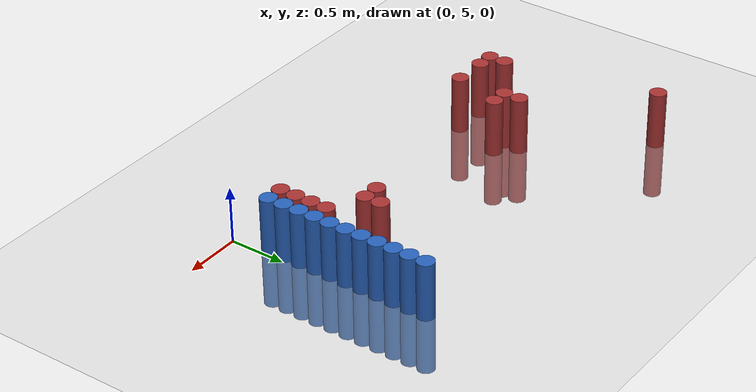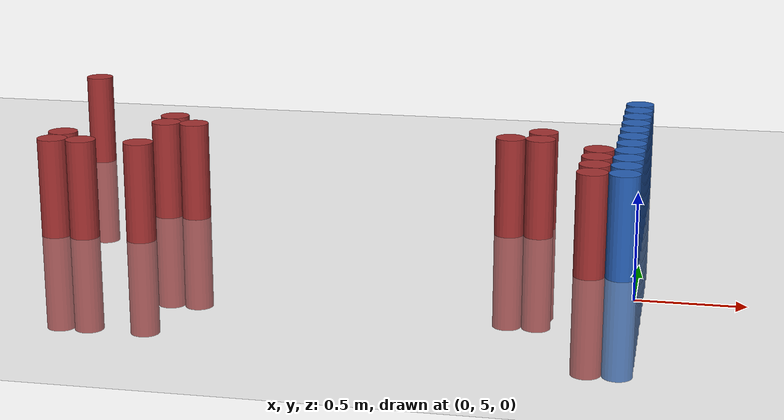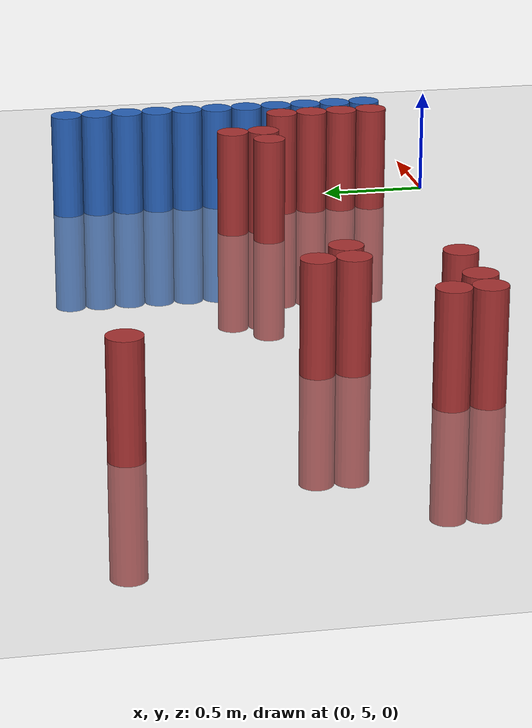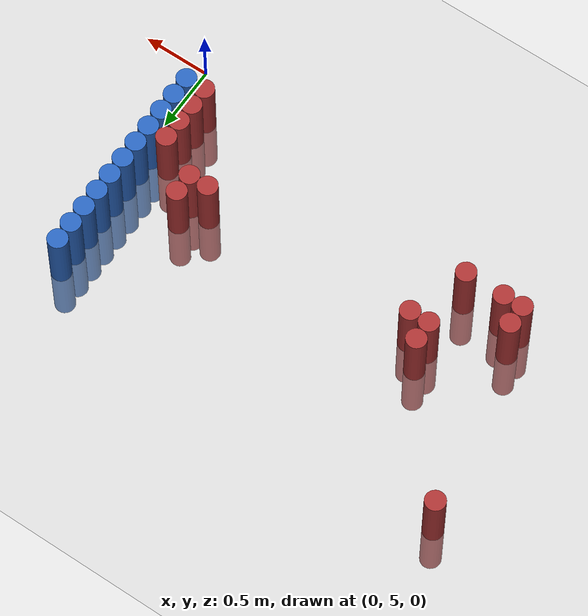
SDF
<sdf version="1.6">
 <world name="world_101">
  <model name="ground_plane">
   <static>1</static>
   <link name="link">
    <collision name="collision">
     <geometry><plane><normal>0 0 1</normal><size>100 100</size></plane></geometry>
     <surface><friction><ode><mu>100</mu><mu2>50</mu2></ode></friction></surface>
    </collision>
    <visual name="visual">
     <cast_shadows>0</cast_shadows>
     <geometry><plane><normal>0 0 1</normal><size>100 100</size></plane></geometry>
     <material>
      <script><uri>file://media/materials/scripts/gazebo.material</uri><name>Gazebo/Grey</name></script>
     </material>
    </visual>
   </link>
  </model>
  <model name="unit_cylinder_152">
   <static>1</static>
   <pose>-3.225000 6.975000 0.000000 0.000000 0.000000 0.000000</pose>
   <link name="link">
    <inertial>
     <mass>1</mass>
     <inertia><ixx>0.145833</ixx><ixy>0</ixy><ixz>0</ixz><iyy>0.145833</iyy><iyz>0</iyz><izz>0.125</izz></inertia>
    </inertial>
    <collision name="collision">
     <geometry><cylinder><radius>0.075000</radius><length>1</length></cylinder></geometry>
    </collision>
    <visual name="visual">
     <geometry><cylinder><radius>0.075000</radius><length>1</length></cylinder></geometry>
     <material>
      <ambient>0.648000 0.192000 0.192000 1</ambient>
      <diffuse>0.648000 0.192000 0.192000 1</diffuse>
     </material>
     <material>
      <script><name>Gazebo/Grey</name><uri>file://media/materials/scripts/gazebo.material</uri></script>
     </material>
    </visual>
   </link>
  </model>
  <model name="unit_cylinder_156">
   <static>1</static>
   <pose>-2.925000 5.475000 0.000000 0.000000 0.000000 0.000000</pose>
   <link name="link">
    <inertial>
     <mass>1</mass>
     <inertia><ixx>0.145833</ixx><ixy>0</ixy><ixz>0</ixz><iyy>0.145833</iyy><iyz>0</iyz><izz>0.125</izz></inertia>
    </inertial>
    <collision name="collision">
     <geometry><cylinder><radius>0.075000</radius><length>1</length></cylinder></geometry>
    </collision>
    <visual name="visual">
     <geometry><cylinder><radius>0.075000</radius><length>1</length></cylinder></geometry>
     <material>
      <ambient>0.648000 0.192000 0.192000 1</ambient>
      <diffuse>0.648000 0.192000 0.192000 1</diffuse>
     </material>
     <material>
      <script><name>Gazebo/Grey</name><uri>file://media/materials/scripts/gazebo.material</uri></script>
     </material>
    </visual>
   </link>
  </model>
  <model name="unit_cylinder_157">
   <static>1</static>
   <pose>-2.925000 5.625000 0.000000 0.000000 0.000000 0.000000</pose>
   <link name="link">
    <inertial>
     <mass>1</mass>
     <inertia><ixx>0.145833</ixx><ixy>0</ixy><ixz>0</ixz><iyy>0.145833</iyy><iyz>0</iyz><izz>0.125</izz></inertia>
    </inertial>
    <collision name="collision">
     <geometry><cylinder><radius>0.075000</radius><length>1</length></cylinder></geometry>
    </collision>
    <visual name="visual">
     <geometry><cylinder><radius>0.075000</radius><length>1</length></cylinder></geometry>
     <material>
      <ambient>0.648000 0.192000 0.192000 1</ambient>
      <diffuse>0.648000 0.192000 0.192000 1</diffuse>
     </material>
     <material>
      <script><name>Gazebo/Grey</name><uri>file://media/materials/scripts/gazebo.material</uri></script>
     </material>
    </visual>
   </link>
  </model>
  <model name="unit_cylinder_158">
   <static>1</static>
   <pose>-2.775000 5.475000 0.000000 0.000000 0.000000 0.000000</pose>
   <link name="link">
    <inertial>
     <mass>1</mass>
     <inertia><ixx>0.145833</ixx><ixy>0</ixy><ixz>0</ixz><iyy>0.145833</iyy><iyz>0</iyz><izz>0.125</izz></inertia>
    </inertial>
    <collision name="collision">
     <geometry><cylinder><radius>0.075000</radius><length>1</length></cylinder></geometry>
    </collision>
    <visual name="visual">
     <geometry><cylinder><radius>0.075000</radius><length>1</length></cylinder></geometry>
     <material>
      <ambient>0.648000 0.192000 0.192000 1</ambient>
      <diffuse>0.648000 0.192000 0.192000 1</diffuse>
     </material>
     <material>
      <script><name>Gazebo/Grey</name><uri>file://media/materials/scripts/gazebo.material</uri></script>
     </material>
    </visual>
   </link>
  </model>
  <model name="unit_cylinder_162">
   <static>1</static>
   <pose>-2.475000 5.475000 0.000000 0.000000 0.000000 0.000000</pose>
   <link name="link">
    <inertial>
     <mass>1</mass>
     <inertia><ixx>0.145833</ixx><ixy>0</ixy><ixz>0</ixz><iyy>0.145833</iyy><iyz>0</iyz><izz>0.125</izz></inertia>
    </inertial>
    <collision name="collision">
     <geometry><cylinder><radius>0.075000</radius><length>1</length></cylinder></geometry>
    </collision>
    <visual name="visual">
     <geometry><cylinder><radius>0.075000</radius><length>1</length></cylinder></geometry>
     <material>
      <ambient>0.648000 0.192000 0.192000 1</ambient>
      <diffuse>0.648000 0.192000 0.192000 1</diffuse>
     </material>
     <material>
      <script><name>Gazebo/Grey</name><uri>file://media/materials/scripts/gazebo.material</uri></script>
     </material>
    </visual>
   </link>
  </model>
  <model name="unit_cylinder_163">
   <static>1</static>
   <pose>-2.475000 5.925000 0.000000 0.000000 0.000000 0.000000</pose>
   <link name="link">
    <inertial>
     <mass>1</mass>
     <inertia><ixx>0.145833</ixx><ixy>0</ixy><ixz>0</ixz><iyy>0.145833</iyy><iyz>0</iyz><izz>0.125</izz></inertia>
    </inertial>
    <collision name="collision">
     <geometry><cylinder><radius>0.075000</radius><length>1</length></cylinder></geometry>
    </collision>
    <visual name="visual">
     <geometry><cylinder><radius>0.075000</radius><length>1</length></cylinder></geometry>
     <material>
      <ambient>0.648000 0.192000 0.192000 1</ambient>
      <diffuse>0.648000 0.192000 0.192000 1</diffuse>
     </material>
     <material>
      <script><name>Gazebo/Grey</name><uri>file://media/materials/scripts/gazebo.material</uri></script>
     </material>
    </visual>
   </link>
  </model>
  <model name="unit_cylinder_164">
   <static>1</static>
   <pose>-2.475000 6.075000 0.000000 0.000000 0.000000 0.000000</pose>
   <link name="link">
    <inertial>
     <mass>1</mass>
     <inertia><ixx>0.145833</ixx><ixy>0</ixy><ixz>0</ixz><iyy>0.145833</iyy><iyz>0</iyz><izz>0.125</izz></inertia>
    </inertial>
    <collision name="collision">
     <geometry><cylinder><radius>0.075000</radius><length>1</length></cylinder></geometry>
    </collision>
    <visual name="visual">
     <geometry><cylinder><radius>0.075000</radius><length>1</length></cylinder></geometry>
     <material>
      <ambient>0.648000 0.192000 0.192000 1</ambient>
      <diffuse>0.648000 0.192000 0.192000 1</diffuse>
     </material>
     <material>
      <script><name>Gazebo/Grey</name><uri>file://media/materials/scripts/gazebo.material</uri></script>
     </material>
    </visual>
   </link>
  </model>
  <model name="unit_cylinder_166">
   <static>1</static>
   <pose>-2.325000 5.925000 0.000000 0.000000 0.000000 0.000000</pose>
   <link name="link">
    <inertial>
     <mass>1</mass>
     <inertia><ixx>0.145833</ixx><ixy>0</ixy><ixz>0</ixz><iyy>0.145833</iyy><iyz>0</iyz><izz>0.125</izz></inertia>
    </inertial>
    <collision name="collision">
     <geometry><cylinder><radius>0.075000</radius><length>1</length></cylinder></geometry>
    </collision>
    <visual name="visual">
     <geometry><cylinder><radius>0.075000</radius><length>1</length></cylinder></geometry>
     <material>
      <ambient>0.648000 0.192000 0.192000 1</ambient>
      <diffuse>0.648000 0.192000 0.192000 1</diffuse>
     </material>
     <material>
      <script><name>Gazebo/Grey</name><uri>file://media/materials/scripts/gazebo.material</uri></script>
     </material>
    </visual>
   </link>
  </model>
  <model name="unit_cylinder_167">
   <static>1</static>
   <pose>-0.675000 5.925000 0.000000 0.000000 0.000000 0.000000</pose>
   <link name="link">
    <inertial>
     <mass>1</mass>
     <inertia><ixx>0.145833</ixx><ixy>0</ixy><ixz>0</ixz><iyy>0.145833</iyy><iyz>0</iyz><izz>0.125</izz></inertia>
    </inertial>
    <collision name="collision">
     <geometry><cylinder><radius>0.075000</radius><length>1</length></cylinder></geometry>
    </collision>
    <visual name="visual">
     <geometry><cylinder><radius>0.075000</radius><length>1</length></cylinder></geometry>
     <material>
      <ambient>0.648000 0.192000 0.192000 1</ambient>
      <diffuse>0.648000 0.192000 0.192000 1</diffuse>
     </material>
     <material>
      <script><name>Gazebo/Grey</name><uri>file://media/materials/scripts/gazebo.material</uri></script>
     </material>
    </visual>
   </link>
  </model>
  <model name="unit_cylinder_168">
   <static>1</static>
   <pose>-0.525000 5.925000 0.000000 0.000000 0.000000 0.000000</pose>
   <link name="link">
    <inertial>
     <mass>1</mass>
     <inertia><ixx>0.145833</ixx><ixy>0</ixy><ixz>0</ixz><iyy>0.145833</iyy><iyz>0</iyz><izz>0.125</izz></inertia>
    </inertial>
    <collision name="collision">
     <geometry><cylinder><radius>0.075000</radius><length>1</length></cylinder></geometry>
    </collision>
    <visual name="visual">
     <geometry><cylinder><radius>0.075000</radius><length>1</length></cylinder></geometry>
     <material>
      <ambient>0.648000 0.192000 0.192000 1</ambient>
      <diffuse>0.648000 0.192000 0.192000 1</diffuse>
     </material>
     <material>
      <script><name>Gazebo/Grey</name><uri>file://media/materials/scripts/gazebo.material</uri></script>
     </material>
    </visual>
   </link>
  </model>
  <model name="unit_cylinder_169">
   <static>1</static>
   <pose>-0.525000 6.075000 0.000000 0.000000 0.000000 0.000000</pose>
   <link name="link">
    <inertial>
     <mass>1</mass>
     <inertia><ixx>0.145833</ixx><ixy>0</ixy><ixz>0</ixz><iyy>0.145833</iyy><iyz>0</iyz><izz>0.125</izz></inertia>
    </inertial>
    <collision name="collision">
     <geometry><cylinder><radius>0.075000</radius><length>1</length></cylinder></geometry>
    </collision>
    <visual name="visual">
     <geometry><cylinder><radius>0.075000</radius><length>1</length></cylinder></geometry>
     <material>
      <ambient>0.648000 0.192000 0.192000 1</ambient>
      <diffuse>0.648000 0.192000 0.192000 1</diffuse>
     </material>
     <material>
      <script><name>Gazebo/Grey</name><uri>file://media/materials/scripts/gazebo.material</uri></script>
     </material>
    </visual>
   </link>
  </model>
  <model name="unit_cylinder_173">
   <static>1</static>
   <pose>-0.225000 5.325000 0.000000 0.000000 0.000000 0.000000</pose>
   <link name="link">
    <inertial>
     <mass>1</mass>
     <inertia><ixx>0.145833</ixx><ixy>0</ixy><ixz>0</ixz><iyy>0.145833</iyy><iyz>0</iyz><izz>0.125</izz></inertia>
    </inertial>
    <collision name="collision">
     <geometry><cylinder><radius>0.075000</radius><length>1</length></cylinder></geometry>
    </collision>
    <visual name="visual">
     <geometry><cylinder><radius>0.075000</radius><length>1</length></cylinder></geometry>
     <material>
      <ambient>0.648000 0.192000 0.192000 1</ambient>
      <diffuse>0.648000 0.192000 0.192000 1</diffuse>
     </material>
     <material>
      <script><name>Gazebo/Grey</name><uri>file://media/materials/scripts/gazebo.material</uri></script>
     </material>
    </visual>
   </link>
  </model>
  <model name="unit_cylinder_174">
   <static>1</static>
   <pose>-0.225000 5.475000 0.000000 0.000000 0.000000 0.000000</pose>
   <link name="link">
    <inertial>
     <mass>1</mass>
     <inertia><ixx>0.145833</ixx><ixy>0</ixy><ixz>0</ixz><iyy>0.145833</iyy><iyz>0</iyz><izz>0.125</izz></inertia>
    </inertial>
    <collision name="collision">
     <geometry><cylinder><radius>0.075000</radius><length>1</length></cylinder></geometry>
    </collision>
    <visual name="visual">
     <geometry><cylinder><radius>0.075000</radius><length>1</length></cylinder></geometry>
     <material>
      <ambient>0.648000 0.192000 0.192000 1</ambient>
      <diffuse>0.648000 0.192000 0.192000 1</diffuse>
     </material>
     <material>
      <script><name>Gazebo/Grey</name><uri>file://media/materials/scripts/gazebo.material</uri></script>
     </material>
    </visual>
   </link>
  </model>
  <model name="unit_cylinder_175">
   <static>1</static>
   <pose>-0.225000 5.625000 0.000000 0.000000 0.000000 0.000000</pose>
   <link name="link">
    <inertial>
     <mass>1</mass>
     <inertia><ixx>0.145833</ixx><ixy>0</ixy><ixz>0</ixz><iyy>0.145833</iyy><iyz>0</iyz><izz>0.125</izz></inertia>
    </inertial>
    <collision name="collision">
     <geometry><cylinder><radius>0.075000</radius><length>1</length></cylinder></geometry>
    </collision>
    <visual name="visual">
     <geometry><cylinder><radius>0.075000</radius><length>1</length></cylinder></geometry>
     <material>
      <ambient>0.648000 0.192000 0.192000 1</ambient>
      <diffuse>0.648000 0.192000 0.192000 1</diffuse>
     </material>
     <material>
      <script><name>Gazebo/Grey</name><uri>file://media/materials/scripts/gazebo.material</uri></script>
     </material>
    </visual>
   </link>
  </model>
  <model name="unit_cylinder_176">
   <static>1</static>
   <pose>-0.225000 5.775000 0.000000 0.000000 0.000000 0.000000</pose>
   <link name="link">
    <inertial>
     <mass>1</mass>
     <inertia><ixx>0.145833</ixx><ixy>0</ixy><ixz>0</ixz><iyy>0.145833</iyy><iyz>0</iyz><izz>0.125</izz></inertia>
    </inertial>
    <collision name="collision">
     <geometry><cylinder><radius>0.075000</radius><length>1</length></cylinder></geometry>
    </collision>
    <visual name="visual">
     <geometry><cylinder><radius>0.075000</radius><length>1</length></cylinder></geometry>
     <material>
      <ambient>0.648000 0.192000 0.192000 1</ambient>
      <diffuse>0.648000 0.192000 0.192000 1</diffuse>
     </material>
     <material>
      <script><name>Gazebo/Grey</name><uri>file://media/materials/scripts/gazebo.material</uri></script>
     </material>
    </visual>
   </link>
  </model>
  <model name="unit_cylinder_180">
   <static>1</static>
   <pose>-0.075000 5.325000 0.000000 0.000000 0.000000 0.000000</pose>
   <link name="link">
    <inertial>
     <mass>1</mass>
     <inertia><ixx>0.145833</ixx><ixy>0</ixy><ixz>0</ixz><iyy>0.145833</iyy><iyz>0</iyz><izz>0.125</izz></inertia>
    </inertial>
    <collision name="collision">
     <geometry><cylinder><radius>0.075000</radius><length>1</length></cylinder></geometry>
    </collision>
    <visual name="visual">
     <geometry><cylinder><radius>0.075000</radius><length>1</length></cylinder></geometry>
     <material>
      <ambient>0.152000 0.379000 0.720000 1</ambient>
      <diffuse>0.152000 0.379000 0.720000 1</diffuse>
     </material>
     <material>
      <script><name>Gazebo/Grey</name><uri>file://media/materials/scripts/gazebo.material</uri></script>
     </material>
    </visual>
   </link>
  </model>
  <model name="unit_cylinder_181">
   <static>1</static>
   <pose>-0.075000 5.475000 0.000000 0.000000 0.000000 0.000000</pose>
   <link name="link">
    <inertial>
     <mass>1</mass>
     <inertia><ixx>0.145833</ixx><ixy>0</ixy><ixz>0</ixz><iyy>0.145833</iyy><iyz>0</iyz><izz>0.125</izz></inertia>
    </inertial>
    <collision name="collision">
     <geometry><cylinder><radius>0.075000</radius><length>1</length></cylinder></geometry>
    </collision>
    <visual name="visual">
     <geometry><cylinder><radius>0.075000</radius><length>1</length></cylinder></geometry>
     <material>
      <ambient>0.152000 0.379000 0.720000 1</ambient>
      <diffuse>0.152000 0.379000 0.720000 1</diffuse>
     </material>
     <material>
      <script><name>Gazebo/Grey</name><uri>file://media/materials/scripts/gazebo.material</uri></script>
     </material>
    </visual>
   </link>
  </model>
  <model name="unit_cylinder_182">
   <static>1</static>
   <pose>-0.075000 5.625000 0.000000 0.000000 0.000000 0.000000</pose>
   <link name="link">
    <inertial>
     <mass>1</mass>
     <inertia><ixx>0.145833</ixx><ixy>0</ixy><ixz>0</ixz><iyy>0.145833</iyy><iyz>0</iyz><izz>0.125</izz></inertia>
    </inertial>
    <collision name="collision">
     <geometry><cylinder><radius>0.075000</radius><length>1</length></cylinder></geometry>
    </collision>
    <visual name="visual">
     <geometry><cylinder><radius>0.075000</radius><length>1</length></cylinder></geometry>
     <material>
      <ambient>0.152000 0.379000 0.720000 1</ambient>
      <diffuse>0.152000 0.379000 0.720000 1</diffuse>
     </material>
     <material>
      <script><name>Gazebo/Grey</name><uri>file://media/materials/scripts/gazebo.material</uri></script>
     </material>
    </visual>
   </link>
  </model>
  <model name="unit_cylinder_183">
   <static>1</static>
   <pose>-0.075000 5.775000 0.000000 0.000000 0.000000 0.000000</pose>
   <link name="link">
    <inertial>
     <mass>1</mass>
     <inertia><ixx>0.145833</ixx><ixy>0</ixy><ixz>0</ixz><iyy>0.145833</iyy><iyz>0</iyz><izz>0.125</izz></inertia>
    </inertial>
    <collision name="collision">
     <geometry><cylinder><radius>0.075000</radius><length>1</length></cylinder></geometry>
    </collision>
    <visual name="visual">
     <geometry><cylinder><radius>0.075000</radius><length>1</length></cylinder></geometry>
     <material>
      <ambient>0.152000 0.379000 0.720000 1</ambient>
      <diffuse>0.152000 0.379000 0.720000 1</diffuse>
     </material>
     <material>
      <script><name>Gazebo/Grey</name><uri>file://media/materials/scripts/gazebo.material</uri></script>
     </material>
    </visual>
   </link>
  </model>
  <model name="unit_cylinder_184">
   <static>1</static>
   <pose>-0.075000 5.925000 0.000000 0.000000 0.000000 0.000000</pose>
   <link name="link">
    <inertial>
     <mass>1</mass>
     <inertia><ixx>0.145833</ixx><ixy>0</ixy><ixz>0</ixz><iyy>0.145833</iyy><iyz>0</iyz><izz>0.125</izz></inertia>
    </inertial>
    <collision name="collision">
     <geometry><cylinder><radius>0.075000</radius><length>1</length></cylinder></geometry>
    </collision>
    <visual name="visual">
     <geometry><cylinder><radius>0.075000</radius><length>1</length></cylinder></geometry>
     <material>
      <ambient>0.152000 0.379000 0.720000 1</ambient>
      <diffuse>0.152000 0.379000 0.720000 1</diffuse>
     </material>
     <material>
      <script><name>Gazebo/Grey</name><uri>file://media/materials/scripts/gazebo.material</uri></script>
     </material>
    </visual>
   </link>
  </model>
  <model name="unit_cylinder_185">
   <static>1</static>
   <pose>-0.075000 6.075000 0.000000 0.000000 0.000000 0.000000</pose>
   <link name="link">
    <inertial>
     <mass>1</mass>
     <inertia><ixx>0.145833</ixx><ixy>0</ixy><ixz>0</ixz><iyy>0.145833</iyy><iyz>0</iyz><izz>0.125</izz></inertia>
    </inertial>
    <collision name="collision">
     <geometry><cylinder><radius>0.075000</radius><length>1</length></cylinder></geometry>
    </collision>
    <visual name="visual">
     <geometry><cylinder><radius>0.075000</radius><length>1</length></cylinder></geometry>
     <material>
      <ambient>0.152000 0.379000 0.720000 1</ambient>
      <diffuse>0.152000 0.379000 0.720000 1</diffuse>
     </material>
     <material>
      <script><name>Gazebo/Grey</name><uri>file://media/materials/scripts/gazebo.material</uri></script>
     </material>
    </visual>
   </link>
  </model>
  <model name="unit_cylinder_186">
   <static>1</static>
   <pose>-0.075000 6.225000 0.000000 0.000000 0.000000 0.000000</pose>
   <link name="link">
    <inertial>
     <mass>1</mass>
     <inertia><ixx>0.145833</ixx><ixy>0</ixy><ixz>0</ixz><iyy>0.145833</iyy><iyz>0</iyz><izz>0.125</izz></inertia>
    </inertial>
    <collision name="collision">
     <geometry><cylinder><radius>0.075000</radius><length>1</length></cylinder></geometry>
    </collision>
    <visual name="visual">
     <geometry><cylinder><radius>0.075000</radius><length>1</length></cylinder></geometry>
     <material>
      <ambient>0.152000 0.379000 0.720000 1</ambient>
      <diffuse>0.152000 0.379000 0.720000 1</diffuse>
     </material>
     <material>
      <script><name>Gazebo/Grey</name><uri>file://media/materials/scripts/gazebo.material</uri></script>
     </material>
    </visual>
   </link>
  </model>
  <model name="unit_cylinder_187">
   <static>1</static>
   <pose>-0.075000 6.375000 0.000000 0.000000 0.000000 0.000000</pose>
   <link name="link">
    <inertial>
     <mass>1</mass>
     <inertia><ixx>0.145833</ixx><ixy>0</ixy><ixz>0</ixz><iyy>0.145833</iyy><iyz>0</iyz><izz>0.125</izz></inertia>
    </inertial>
    <collision name="collision">
     <geometry><cylinder><radius>0.075000</radius><length>1</length></cylinder></geometry>
    </collision>
    <visual name="visual">
     <geometry><cylinder><radius>0.075000</radius><length>1</length></cylinder></geometry>
     <material>
      <ambient>0.152000 0.379000 0.720000 1</ambient>
      <diffuse>0.152000 0.379000 0.720000 1</diffuse>
     </material>
     <material>
      <script><name>Gazebo/Grey</name><uri>file://media/materials/scripts/gazebo.material</uri></script>
     </material>
    </visual>
   </link>
  </model>
  <model name="unit_cylinder_188">
   <static>1</static>
   <pose>-0.075000 6.525000 0.000000 0.000000 0.000000 0.000000</pose>
   <link name="link">
    <inertial>
     <mass>1</mass>
     <inertia><ixx>0.145833</ixx><ixy>0</ixy><ixz>0</ixz><iyy>0.145833</iyy><iyz>0</iyz><izz>0.125</izz></inertia>
    </inertial>
    <collision name="collision">
     <geometry><cylinder><radius>0.075000</radius><length>1</length></cylinder></geometry>
    </collision>
    <visual name="visual">
     <geometry><cylinder><radius>0.075000</radius><length>1</length></cylinder></geometry>
     <material>
      <ambient>0.152000 0.379000 0.720000 1</ambient>
      <diffuse>0.152000 0.379000 0.720000 1</diffuse>
     </material>
     <material>
      <script><name>Gazebo/Grey</name><uri>file://media/materials/scripts/gazebo.material</uri></script>
     </material>
    </visual>
   </link>
  </model>
  <model name="unit_cylinder_189">
   <static>1</static>
   <pose>-0.075000 6.675000 0.000000 0.000000 0.000000 0.000000</pose>
   <link name="link">
    <inertial>
     <mass>1</mass>
     <inertia><ixx>0.145833</ixx><ixy>0</ixy><ixz>0</ixz><iyy>0.145833</iyy><iyz>0</iyz><izz>0.125</izz></inertia>
    </inertial>
    <collision name="collision">
     <geometry><cylinder><radius>0.075000</radius><length>1</length></cylinder></geometry>
    </collision>
    <visual name="visual">
     <geometry><cylinder><radius>0.075000</radius><length>1</length></cylinder></geometry>
     <material>
      <ambient>0.152000 0.379000 0.720000 1</ambient>
      <diffuse>0.152000 0.379000 0.720000 1</diffuse>
     </material>
     <material>
      <script><name>Gazebo/Grey</name><uri>file://media/materials/scripts/gazebo.material</uri></script>
     </material>
    </visual>
   </link>
  </model>
  <model name="unit_cylinder_190">
   <static>1</static>
   <pose>-0.075000 6.825000 0.000000 0.000000 0.000000 0.000000</pose>
   <link name="link">
    <inertial>
     <mass>1</mass>
     <inertia><ixx>0.145833</ixx><ixy>0</ixy><ixz>0</ixz><iyy>0.145833</iyy><iyz>0</iyz><izz>0.125</izz></inertia>
    </inertial>
    <collision name="collision">
     <geometry><cylinder><radius>0.075000</radius><length>1</length></cylinder></geometry>
    </collision>
    <visual name="visual">
     <geometry><cylinder><radius>0.075000</radius><length>1</length></cylinder></geometry>
     <material>
      <ambient>0.152000 0.379000 0.720000 1</ambient>
      <diffuse>0.152000 0.379000 0.720000 1</diffuse>
     </material>
     <material>
      <script><name>Gazebo/Grey</name><uri>file://media/materials/scripts/gazebo.material</uri></script>
     </material>
    </visual>
   </link>
  </model>
 </world>
</sdf>
